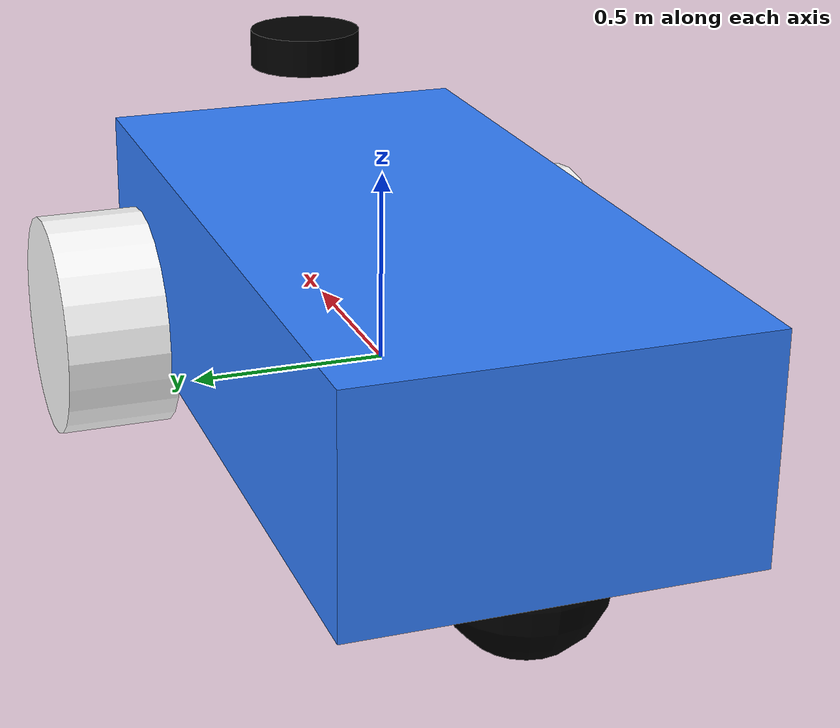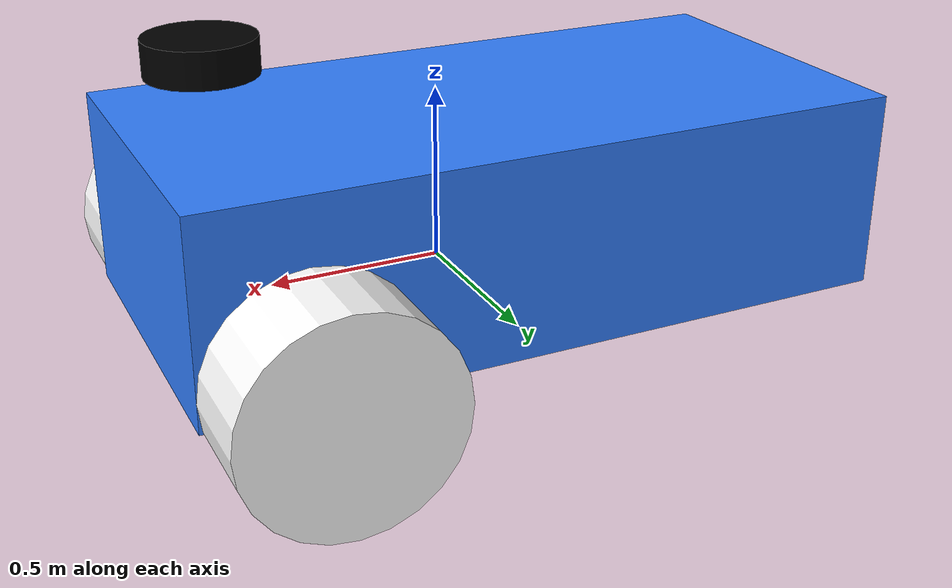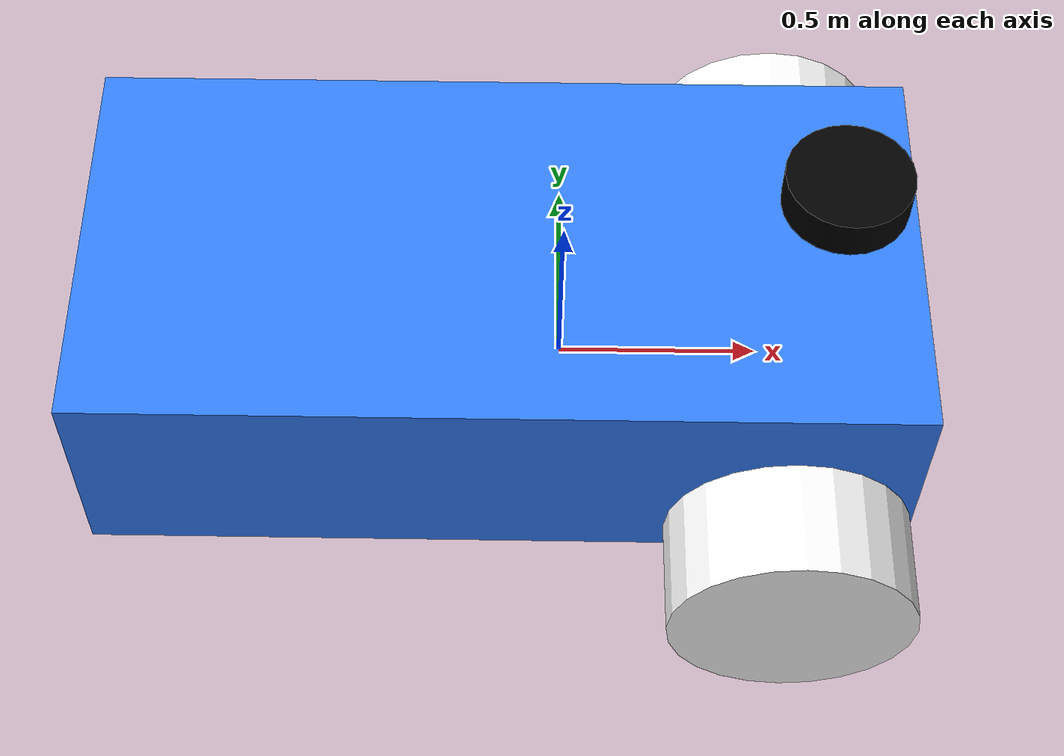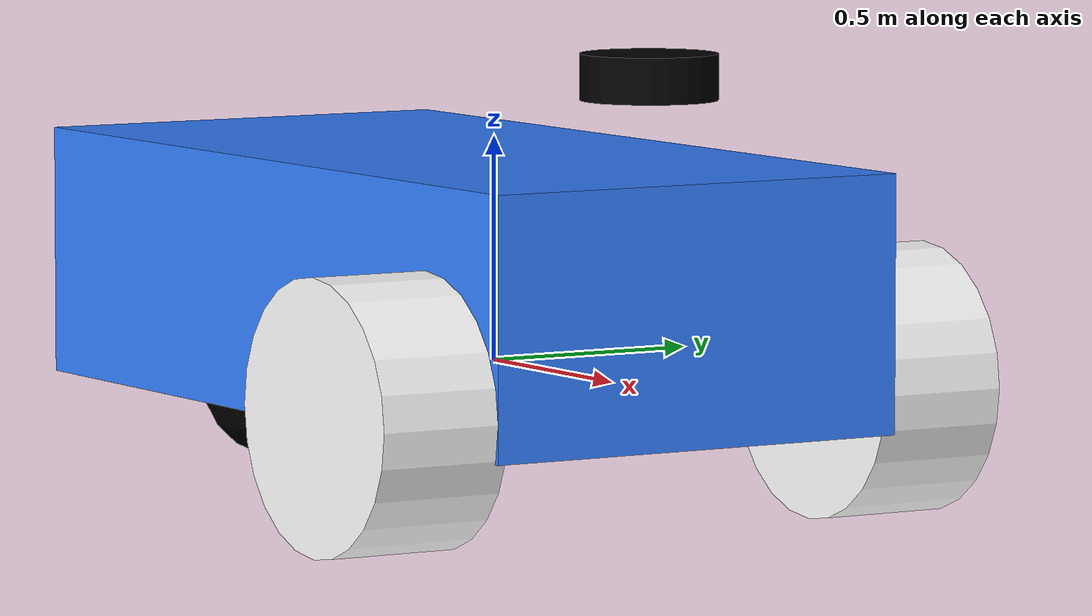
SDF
<?xml version="1.0" ?>

<sdf version="1.6">
    <model name='diff_drive_blu'>
      <pose>0 0 0 0 0 0</pose>

      <!--
        Add frame for the LiDAR
      -->

      <link name="lidar_frame">
        <pose relative_to='chassis'>0.8 0 0.5 0 0 0</pose>
        <inertial>
          <mass>0.1</mass>
          <inertia>
            <ixx>0.001</ixx>
            <iyy>0.001</iyy>
            <izz>0.001</izz>
          </inertia>
        </inertial>
        <visual name='visual'>
          <geometry>
            <cylinder>
              <radius>0.15</radius>
              <length>0.1</length>
            </cylinder>
          </geometry>
          <material>
            <ambient>0 0 0 1</ambient>
            <diffuse>0 0 0 1</diffuse>
          </material>
        </visual>
        <sensor name='lidar' type='lidar'>
          <pose relative_to='lidar_frame'>0 0 0 0 0 0</pose>
          <visualize>true</visualize>
          <update_rate>10</update_rate>
          <ray>
            <scan>
              <horizontal>
                <samples>640</samples>
                <resolution>1</resolution>
                <min_angle>-1.396263</min_angle>
                <max_angle>1.396263</max_angle>
              </horizontal>
              <vertical>
                <samples>1</samples>
                <resolution>0.01</resolution>
                <min_angle>0</min_angle>
                <max_angle>0</max_angle>
              </vertical>
            </scan>
            <range>
              <min>0.08</min>
              <max>30.0</max>
              <resolution>0.01</resolution>
            </range>
          </ray>
          <topic>/model/diff_drive_blu/chassis_lidar/forward</topic>
          <gz_frame_id>diff_drive_blu/lidar_frame</gz_frame_id>
          <always_on>true</always_on>
        </sensor>
      </link>

      <!--
        Add the LiDAR as a join to the chassis
      -->

      <joint name='lidar_joint' type='fixed'>
        <parent>chassis</parent>
        <child>lidar_frame</child>
      </joint>

      <link name='chassis'>
        <pose>-0.151427 -0 0.175 0 -0 0</pose>
        <inertial>
          <mass>1.14395</mass>
          <inertia>
            <ixx>0.126164</ixx>
            <ixy>0</ixy>
            <ixz>0</ixz>
            <iyy>0.416519</iyy>
            <iyz>0</iyz>
            <izz>0.481014</izz>
          </inertia>
        </inertial>
        <visual name='visual'>
          <geometry>
            <box>
              <size>2.01142 1 0.568726</size>
            </box>
          </geometry>
          <material>
            <ambient>0.2 0.5 1.0 1</ambient>
            <diffuse>0.2 0.5 1.0 1</diffuse>
            <specular>0.0 0.0 1.0 1</specular>
          </material>
        </visual>
        <collision name='collision'>
          <geometry>
            <box>
              <size>2.01142 1 0.568726</size>
            </box>
          </geometry>
        </collision>
      </link>

      <link name='left_wheel'>
        <pose>0.554283 0.625029 -0.025 -1.5707 0 0</pose>
        <inertial>
          <mass>2</mass>
          <inertia>
            <ixx>0.145833</ixx>
            <ixy>0</ixy>
            <ixz>0</ixz>
            <iyy>0.145833</iyy>
            <iyz>0</iyz>
            <izz>0.125</izz>
          </inertia>
        </inertial>
        <visual name='visual'>
          <geometry>
            <cylinder>
              <radius>0.3</radius>
              <length>0.3</length>
            </cylinder>
          </geometry>
          <material>
            <ambient>1.0 1.0 1.0 1</ambient>
            <diffuse>1.0 1.0 1.0 1</diffuse>
            <specular>1.0 1.0 1.0 1</specular>
          </material>
        </visual>
        <collision name='collision'>
          <geometry>
            <cylinder>
              <radius>0.3</radius>
              <length>0.3</length>
            </cylinder>
          </geometry>
          <surface>
            <friction>
              <ode>
                <mu>1</mu>
                <mu2>1</mu2>
                <slip1>0.035</slip1>
                <slip2>0</slip2>
                <fdir1>0 0 1</fdir1>
              </ode>
              <bullet>
                <friction>1</friction>
                <friction2>1</friction2>
                <rolling_friction>0.1</rolling_friction>
              </bullet>
            </friction>
          </surface>
        </collision>
      </link>

      <link name='right_wheel'>
        <pose>0.554282 -0.625029 -0.025 -1.5707 0 0</pose>
        <inertial>
          <mass>2</mass>
          <inertia>
            <ixx>0.145833</ixx>
            <ixy>0</ixy>
            <ixz>0</ixz>
            <iyy>0.145833</iyy>
            <iyz>0</iyz>
            <izz>0.125</izz>
          </inertia>
        </inertial>
        <visual name='visual'>
          <geometry>
            <cylinder>
              <radius>0.3</radius>
              <length>0.3</length>
            </cylinder>
          </geometry>
          <material>
            <ambient>1.0 1.0 1.0 1</ambient>
            <diffuse>1.0 1.0 1.0 1</diffuse>
            <specular>1.0 1.0 1.0 1</specular>
          </material>
        </visual>
        <collision name='collision'>
          <geometry>
            <cylinder>
              <radius>0.3</radius>
              <length>0.3</length>
            </cylinder>
          </geometry>
          <surface>
            <friction>
              <ode>
                <mu>1</mu>
                <mu2>1</mu2>
                <slip1>0.035</slip1>
                <slip2>0</slip2>
                <fdir1>0 0 1</fdir1>
              </ode>
              <bullet>
                <friction>1</friction>
                <friction2>1</friction2>
                <rolling_friction>0.1</rolling_friction>
              </bullet>
            </friction>
          </surface>
        </collision>
      </link>

      <link name='caster'>
        <pose>-0.957138 -0 -0.125 0 -0 0</pose>
        <inertial>
          <mass>1</mass>
          <inertia>
            <ixx>0.1</ixx>
            <ixy>0</ixy>
            <ixz>0</ixz>
            <iyy>0.1</iyy>
            <iyz>0</iyz>
            <izz>0.1</izz>
          </inertia>
        </inertial>
        <visual name='visual'>
          <geometry>
            <sphere>
              <radius>0.2</radius>
            </sphere>
          </geometry>
          <material>
            <ambient>0.0 0.0 0.0 1</ambient>
            <diffuse>0.0 0.0 0.0 1</diffuse>
            <specular>0.0 0.0 0.0 1</specular>
          </material>
        </visual>
        <collision name='collision'>
          <geometry>
            <sphere>
              <radius>0.2</radius>
            </sphere>
          </geometry>
        </collision>
      </link>

      <joint name='left_wheel_joint' type='revolute'>
        <parent>chassis</parent>
        <child>left_wheel</child>
        <axis>
          <xyz>0 0 1</xyz>
          <limit>
            <lower>-1.79769e+308</lower>
            <upper>1.79769e+308</upper>
          </limit>
        </axis>
      </joint>

      <joint name='right_wheel_joint' type='revolute'>
        <parent>chassis</parent>
        <child>right_wheel</child>
        <axis>
          <xyz>0 0 1</xyz>
          <limit>
            <lower>-1.79769e+308</lower>
            <upper>1.79769e+308</upper>
          </limit>
        </axis>
      </joint>

      <joint name='caster_wheel' type='ball'>
        <parent>chassis</parent>
        <child>caster</child>
      </joint>

      <!--
        Gazebo plugin for differential drive bot
      -->
      <plugin
        filename="gz-sim-diff-drive-system"
        name="gz::sim::systems::DiffDrive">

        <!--
          Specifies the joints that control the left and right wheels
        -->
        <left_joint>left_wheel_joint</left_joint>
        <right_joint>right_wheel_joint</right_joint>

        <!--
          Distance between the two wheels of the robot
        -->
        <wheel_separation>1.25</wheel_separation>

        <!--
          Radius of the wheels (important for computing rotation speed)
        -->
        <wheel_radius>0.3</wheel_radius>

        <!--
          How often the plugin publishes position and orientation (sec)
        -->
        <odom_publish_frequency>1</odom_publish_frequency>

        <!--
          Lin accel is measured in m/s^2
        -->
        <max_linear_acceleration>1</max_linear_acceleration>
        <min_linear_acceleration>-1</min_linear_acceleration>

        <!--
          Ang accel is measured in radians/s^2
        -->
        <max_angular_acceleration>2</max_angular_acceleration>
        <min_angular_acceleration>-2</min_angular_acceleration>

        <!--
          Lin vel is measured in m/s
        -->
        <max_linear_velocity>1.0</max_linear_velocity>
        <min_linear_velocity>-1.0</min_linear_velocity>

        <!--
          Ang vel is measured in radians/s
        -->
        <max_angular_velocity>1</max_angular_velocity>
        <min_angular_velocity>-1</min_angular_velocity>

        <!--
          Specify the topic for communication
        -->
        <topic>/model/diff_drive_blu/cmd_vel</topic>

      </plugin>

    </model>
</sdf>
